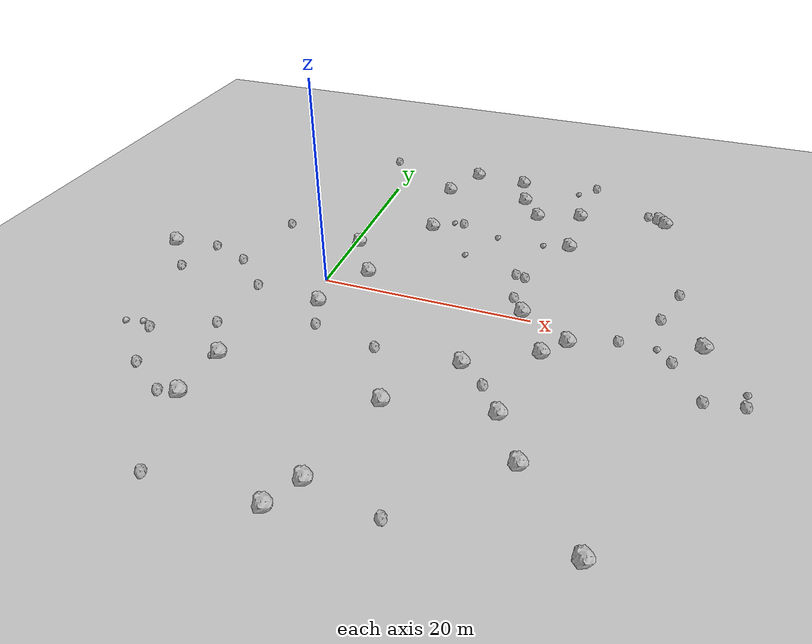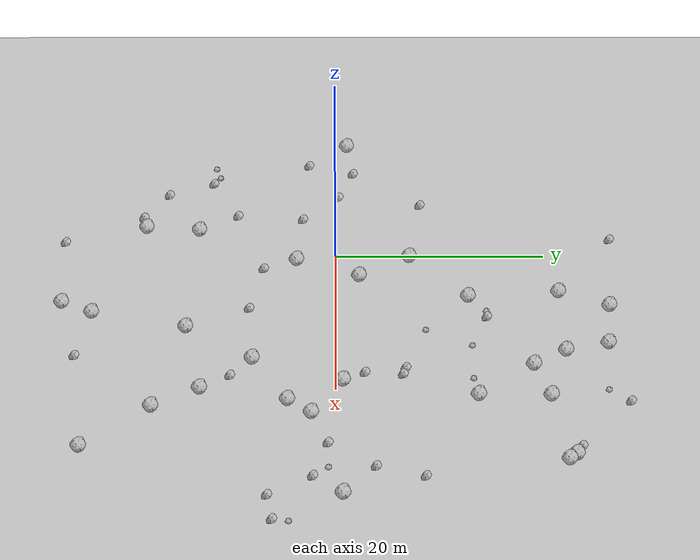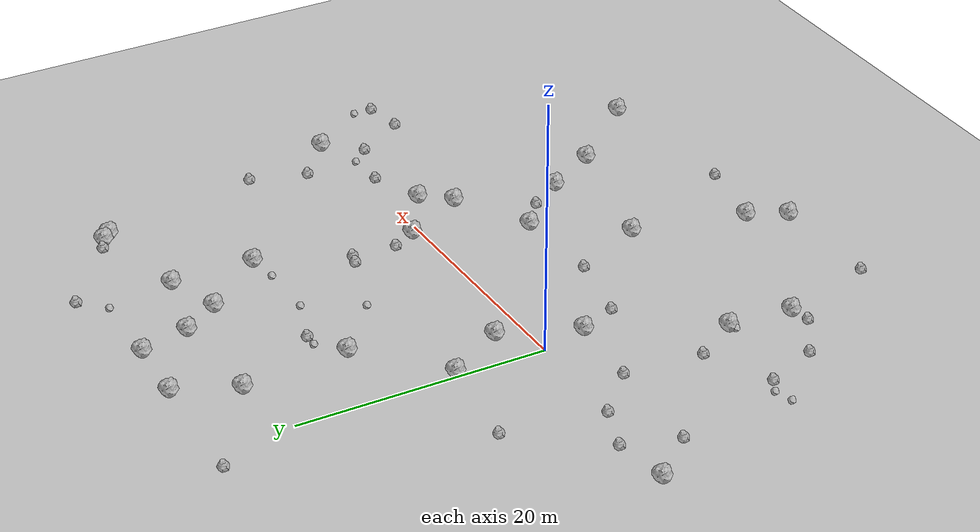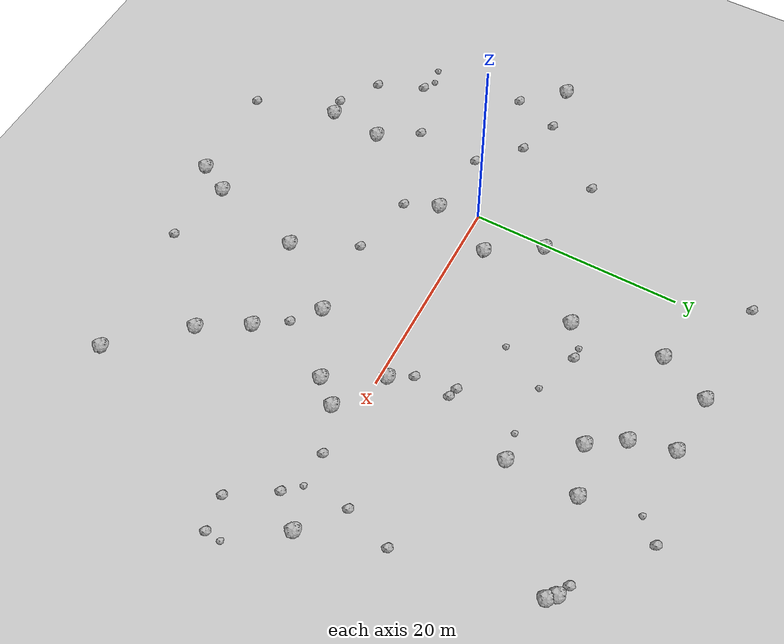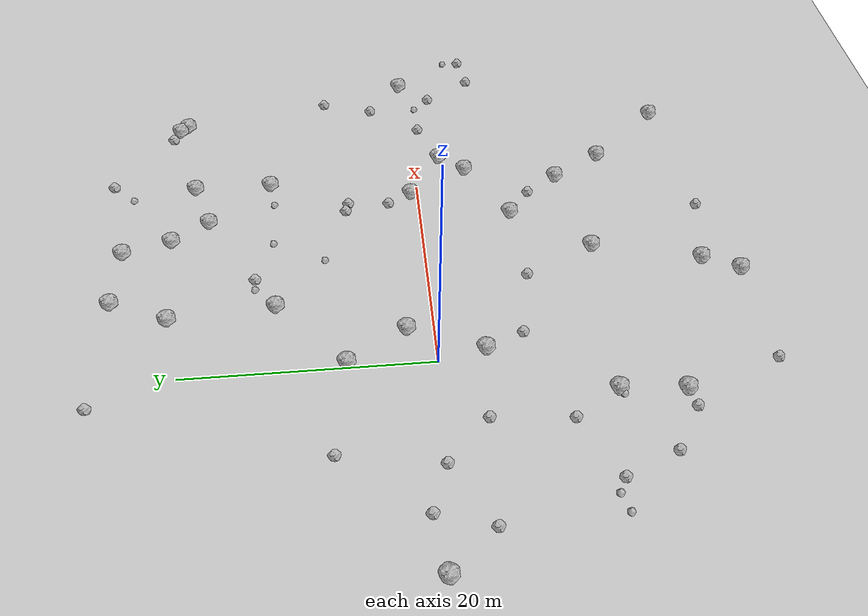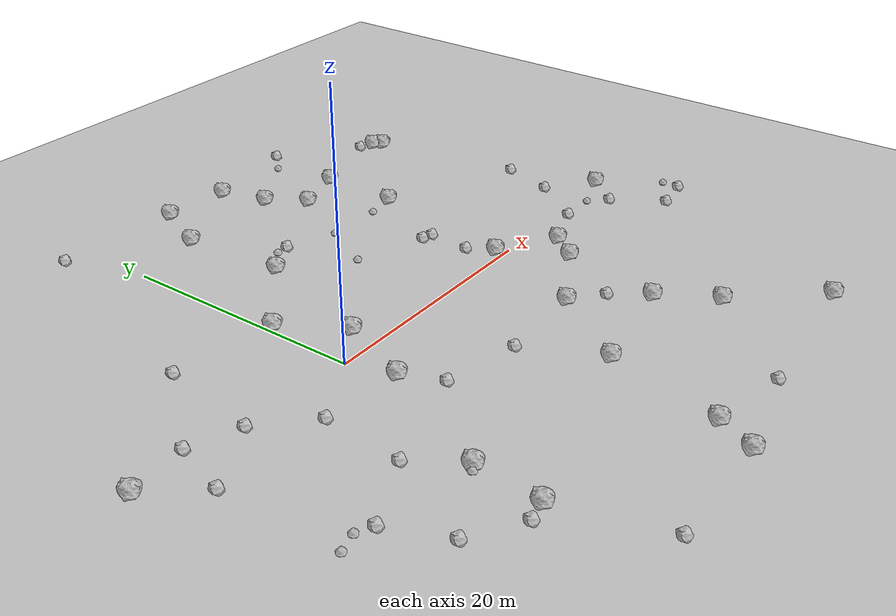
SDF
<sdf version="1.6">
 <world name="default">
  <include><uri>model://custom_ground</uri></include>
  <include><uri>model://sun</uri></include>
  <model name="rock1_0_0">
   <include><uri>model://rock1</uri><pose>6.683829319620614 12.563256110951997 0.5 0 0 0</pose></include>
  </model>
  <model name="rock1_0_1">
   <include><uri>model://rock1</uri><pose>9.08796225509801 -23.036213081461405 0.5 0 0 0</pose></include>
  </model>
  <model name="rock1_0_2">
   <include><uri>model://rock1</uri><pose>13.685944129815915 25.494887184255866 0.5 0 0 0</pose></include>
  </model>
  <model name="rock1_0_3">
   <include><uri>model://rock1</uri><pose>23.717331327281073 -2.2250579873348677 0.5 0 0 0</pose></include>
  </model>
  <model name="rock1_0_4">
   <include><uri>model://rock1</uri><pose>0.520594525025821 7.0740542030518725 0.5 0 0 0</pose></include>
  </model>
  <model name="rock1_0_5">
   <include><uri>model://rock1</uri><pose>-4.125925457058997 -18.343865225174383 0.5 0 0 0</pose></include>
  </model>
  <model name="rock1_0_6">
   <include><uri>model://rock1</uri><pose>21.88236892255437 -4.423500342052364 0.5 0 0 0</pose></include>
  </model>
  <model name="rock1_0_7">
   <include><uri>model://rock1</uri><pose>8.091820574988681 25.905427243451236 0.5 0 0 0</pose></include>
  </model>
  <model name="rock1_0_8">
   <include><uri>model://rock1</uri><pose>14.760941934575321 21.475962190216507 0.5 0 0 0</pose></include>
  </model>
  <model name="rock1_0_9">
   <include><uri>model://rock1</uri><pose>28.390816804770296 -23.16677727529754 0.5 0 0 0</pose></include>
  </model>
  <model name="rock1_0_10">
   <include><uri>model://rock1</uri><pose>20.24625109625547 -12.520809226118 0.5 0 0 0</pose></include>
  </model>
  <model name="rock1_0_11">
   <include><uri>model://rock1</uri><pose>11.291855326111527 -14.087074760044176 0.5 0 0 0</pose></include>
  </model>
  <model name="rock1_0_12">
   <include><uri>model://rock1</uri><pose>-17.536762615596786 1.1036908232266498 0.5 0 0 0</pose></include>
  </model>
  <model name="rock1_0_13">
   <include><uri>model://rock1</uri><pose>21.249378878466743 19.80832548098106 0.5 0 0 0</pose></include>
  </model>
  <model name="rock1_0_14">
   <include><uri>model://rock1</uri><pose>-3.679675316694798 -13.20739054047004 0.5 0 0 0</pose></include>
  </model>
  <model name="rock1_0_15">
   <include><uri>model://rock1</uri><pose>30.13876259033902 21.028865719001438 0.5 0 0 0</pose></include>
  </model>
  <model name="rock1_0_16">
   <include><uri>model://rock1</uri><pose>22.812282840596332 -16.89652458572579 0.5 0 0 0</pose></include>
  </model>
  <model name="rock1_0_17">
   <include><uri>model://rock1</uri><pose>16.81095708081552 18.398201418854228 0.5 0 0 0</pose></include>
  </model>
  <model name="rock1_0_18">
   <include><uri>model://rock1</uri><pose>34.754521971912396 0.6775441465180378 0.5 0 0 0</pose></include>
  </model>
  <model name="rock1_0_19">
   <include><uri>model://rock1</uri><pose>0.9990382940599005 -3.748029188255572 0.5 0 0 0</pose></include>
  </model>
  <model name="rock1_0_20">
   <include><uri>model://rock1</uri><pose>7.573008258058419 -25.951900329216965 0.5 0 0 0</pose></include>
  </model>
  <model name="rock1_0_21">
   <include><uri>model://rock1</uri><pose>15.92608936969635 -7.770130264954279 0.5 0 0 0</pose></include>
  </model>
  <model name="rock1_0_22">
   <include><uri>model://rock1</uri><pose>5.987800347408363 21.16573884028726 0.5 0 0 0</pose></include>
  </model>
  <model name="rock1_0_23">
   <include><uri>model://rock1</uri><pose>29.484117278330686 21.707811975816746 0.5 0 0 0</pose></include>
  </model>
  <model name="rock1_0_24">
   <include><uri>model://rock1</uri><pose>3.4993109547693493 2.244908886840662 0.5 0 0 0</pose></include>
  </model>
  <model name="rock1_0_25">
   <include><uri>model://rock1</uri><pose>19.10142445560796 0.6883380012048015 0.5 0 0 0</pose></include>
  </model>
  <model name="rock1_0_26">
   <include><uri>model://rock1</uri><pose>21.193138110962174 13.152814482495067 0.5 0 0 0</pose></include>
  </model>
  <model name="rock2_0_0">
   <include><uri>model://rock2</uri><pose>8.350652109842734 -8.14648882077795 0.3 0 0 0</pose></include>
  </model>
  <model name="rock2_0_1">
   <include><uri>model://rock2</uri><pose>28.251882004683097 22.286067011757225 0.3 0 0 0</pose></include>
  </model>
  <model name="rock2_0_2">
   <include><uri>model://rock2</uri><pose>38.0735040987362 -5.590192097599264 0.3 0 0 0</pose></include>
  </model>
  <model name="rock2_0_3">
   <include><uri>model://rock2</uri><pose>17.851666714785658 2.743183120974379 0.3 0 0 0</pose></include>
  </model>
  <model name="rock2_0_4">
   <include><uri>model://rock2</uri><pose>9.639766697022576 14.278633790830625 0.3 0 0 0</pose></include>
  </model>
  <model name="rock2_0_5">
   <include><uri>model://rock2</uri><pose>-2.3135984505754266 26.502269249257687 0.3 0 0 0</pose></include>
  </model>
  <model name="rock2_0_6">
   <include><uri>model://rock2</uri><pose>30.995019644533357 3.682215667107691 0.3 0 0 0</pose></include>
  </model>
  <model name="rock2_0_7">
   <include><uri>model://rock2</uri><pose>17.19444429230203 6.5329469914396086 0.3 0 0 0</pose></include>
  </model>
  <model name="rock2_0_8">
   <include><uri>model://rock2</uri><pose>-9.548882861327609 -16.309709474258664 0.3 0 0 0</pose></include>
  </model>
  <model name="rock2_0_9">
   <include><uri>model://rock2</uri><pose>-14.409704504121057 -2.5972309277436736 0.3 0 0 0</pose></include>
  </model>
  <model name="rock2_0_10">
   <include><uri>model://rock2</uri><pose>21.985507293479586 27.088809256989606 0.3 0 0 0</pose></include>
  </model>
  <model name="rock2_0_11">
   <include><uri>model://rock2</uri><pose>-13.047160031417231 1.7222564542742518 0.3 0 0 0</pose></include>
  </model>
  <model name="rock2_0_12">
   <include><uri>model://rock2</uri><pose>-5.865754008455964 -18.659980421858954 0.3 0 0 0</pose></include>
  </model>
  <model name="rock2_0_13">
   <include><uri>model://rock2</uri><pose>-5.56592280030628 -3.16200994876559 0.3 0 0 0</pose></include>
  </model>
  <model name="rock2_0_14">
   <include><uri>model://rock2</uri><pose>2.243895410631268 -6.8654983286858915 0.3 0 0 0</pose></include>
  </model>
  <model name="rock2_0_15">
   <include><uri>model://rock2</uri><pose>18.10771731803485 6.2773804008232545 0.3 0 0 0</pose></include>
  </model>
  <model name="rock2_0_16">
   <include><uri>model://rock2</uri><pose>32.307989607189725 -2.0114493193569807 0.3 0 0 0</pose></include>
  </model>
  <model name="rock2_0_17">
   <include><uri>model://rock2</uri><pose>-6.11795882356744 -9.484875695440689 0.3 0 0 0</pose></include>
  </model>
  <model name="rock2_0_18">
   <include><uri>model://rock2</uri><pose>18.269400574906463 -9.73524321047125 0.3 0 0 0</pose></include>
  </model>
  <model name="rock2_0_19">
   <include><uri>model://rock2</uri><pose>34.865374164592446 -6.085168206754176 0.3 0 0 0</pose></include>
  </model>
  <model name="rock2_0_20">
   <include><uri>model://rock2</uri><pose>32.349545852880006 8.113038989074234 0.3 0 0 0</pose></include>
  </model>
  <model name="rock2_0_21">
   <include><uri>model://rock2</uri><pose>27.798120591699004 -0.6454283931167808 0.3 0 0 0</pose></include>
  </model>
  <model name="rock2_0_22">
   <include><uri>model://rock2</uri><pose>15.380447295844867 -24.292995372157794 0.3 0 0 0</pose></include>
  </model>
  <model name="rock2_0_23">
   <include><uri>model://rock2</uri><pose>-11.383707649386825 -11.983264362743583 0.3 0 0 0</pose></include>
  </model>
  <model name="rock2_0_24">
   <include><uri>model://rock2</uri><pose>-7.866536531166766 8.257973525109108 0.3 0 0 0</pose></include>
  </model>
  <model name="rock2_0_25">
   <include><uri>model://rock2</uri><pose>-1.9235701892559227 -26.0966620384546 0.3 0 0 0</pose></include>
  </model>
  <model name="rock2_0_26">
   <include><uri>model://rock2</uri><pose>-9.1848462026959 0.31101427849172225 0.3 0 0 0</pose></include>
  </model>
  <model name="rock3_0_0">
   <include><uri>model://rock3</uri><pose>30.995772117568677 -0.6287481198843388 0.2 0 0 0</pose></include>
  </model>
  <model name="rock3_0_1">
   <include><uri>model://rock3</uri><pose>38.17532104489711 -4.132349837530921 0.2 0 0 0</pose></include>
  </model>
  <model name="rock3_0_2">
   <include><uri>model://rock3</uri><pose>-12.573494717524724 -11.38805208332563 0.2 0 0 0</pose></include>
  </model>
  <model name="rock3_0_3">
   <include><uri>model://rock3</uri><pose>8.574873452863347 14.233047599251748 0.2 0 0 0</pose></include>
  </model>
  <model name="rock3_0_4">
   <include><uri>model://rock3</uri><pose>18.55158561217661 12.760124763365411 0.2 0 0 0</pose></include>
  </model>
  <model name="rock3_0_5">
   <include><uri>model://rock3</uri><pose>20.1898008757098 25.156410638098137 0.2 0 0 0</pose></include>
  </model>
  <model name="rock3_0_6">
   <include><uri>model://rock3</uri><pose>11.4355155089123 8.46124159024253 0.2 0 0 0</pose></include>
  </model>
  <model name="rock3_0_7">
   <include><uri>model://rock3</uri><pose>-14.085990657357566 -11.800559569086492 0.2 0 0 0</pose></include>
  </model>
  <model name="rock3_0_8">
   <include><uri>model://rock3</uri><pose>13.745544496064177 12.774011002982007 0.2 0 0 0</pose></include>
  </model>
  <model name="rock3_0_9">
   <include><uri>model://rock3</uri><pose>-4.270213315576996 -13.538970089172718 0.2 0 0 0</pose></include>
  </model>
 </world>
</sdf>
